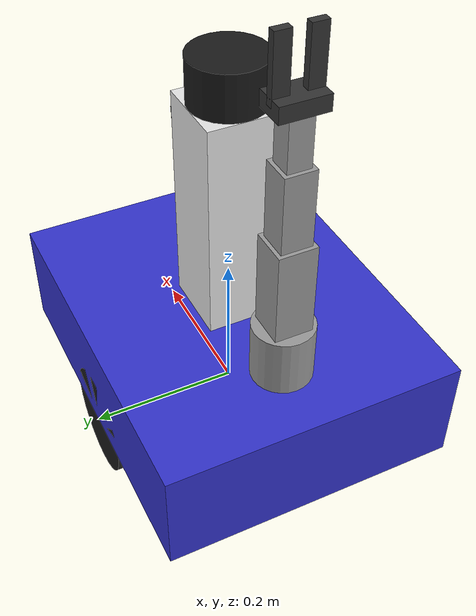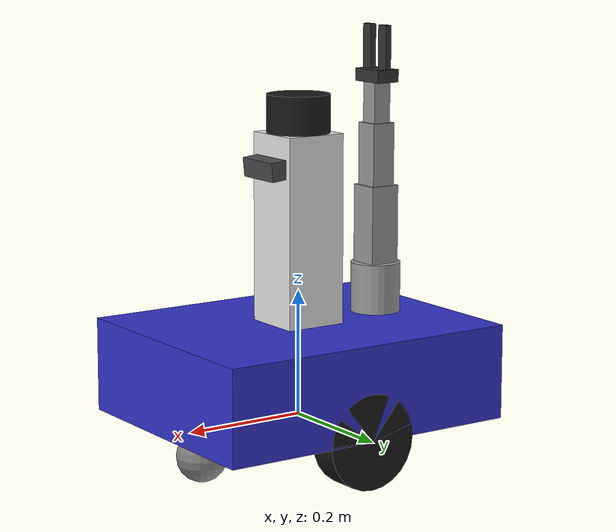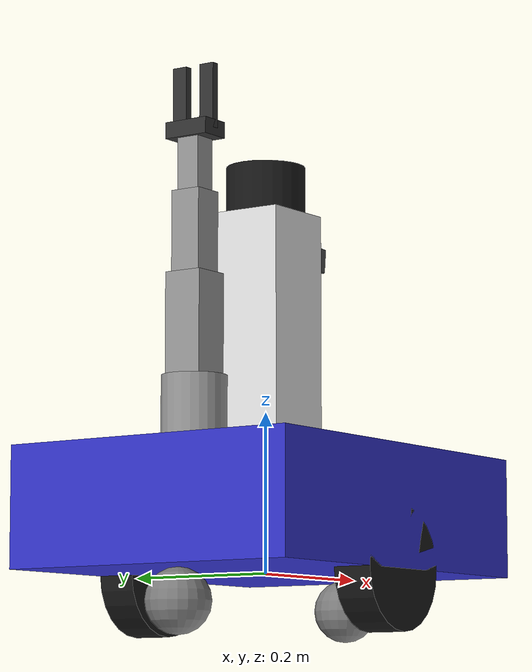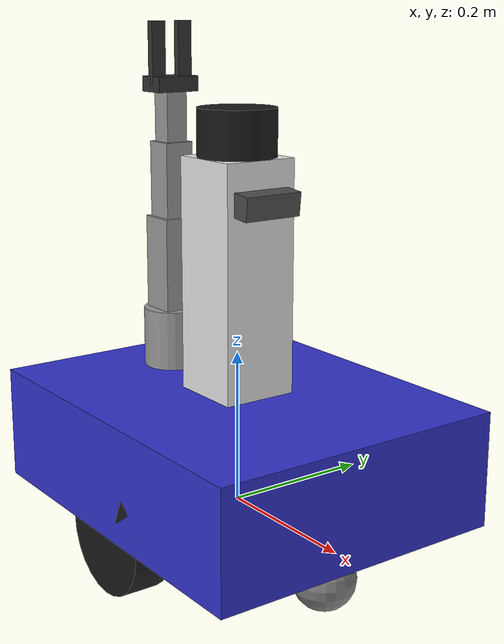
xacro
<?xml version="1.0"?>
<robot xmlns:xacro="http://www.ros.org/wiki/xacro" name="vla_robot">

  <!-- Include constants and macros -->
  <xacro:include filename="$(find robot_description)/urdf/common_properties.xacro"/>

  <!-- Robot Properties -->
  <xacro:property name="base_width" value="0.4"/>
  <xacro:property name="base_length" value="0.5"/>
  <xacro:property name="base_height" value="0.15"/>
  <xacro:property name="wheel_radius" value="0.075"/>
  <xacro:property name="wheel_width" value="0.05"/>
  <xacro:property name="wheel_separation" value="0.35"/>

  <!-- Base Link (Main body) -->
  <link name="base_footprint"/>

  <link name="base_link">
    <visual>
      <geometry>
        <box size="${base_length} ${base_width} ${base_height}"/>
      </geometry>
      <material name="blue">
        <color rgba="0.2 0.2 0.8 1.0"/>
      </material>
    </visual>
    <collision>
      <geometry>
        <box size="${base_length} ${base_width} ${base_height}"/>
      </geometry>
    </collision>
    <inertial>
      <mass value="15.0"/>
      <inertia ixx="0.234" ixy="0.0" ixz="0.0" iyy="0.469" iyz="0.0" izz="0.625"/>
    </inertial>
  </link>

  <joint name="base_footprint_joint" type="fixed">
    <parent link="base_footprint"/>
    <child link="base_link"/>
    <origin xyz="0 0 ${wheel_radius}" rpy="0 0 0"/>
  </joint>

  <!-- Wheels (Differential Drive) -->
  <xacro:macro name="wheel" params="prefix reflect">
    <link name="${prefix}_wheel">
      <visual>
        <geometry>
          <cylinder radius="${wheel_radius}" length="${wheel_width}"/>
        </geometry>
        <material name="black">
          <color rgba="0.1 0.1 0.1 1.0"/>
        </material>
        <origin xyz="0 0 0" rpy="${pi/2} 0 0"/>
      </visual>
      <collision>
        <geometry>
          <cylinder radius="${wheel_radius}" length="${wheel_width}"/>
        </geometry>
        <origin xyz="0 0 0" rpy="${pi/2} 0 0"/>
      </collision>
      <inertial>
        <mass value="1.0"/>
        <inertia ixx="0.001" ixy="0.0" ixz="0.0" iyy="0.001" iyz="0.0" izz="0.002"/>
      </inertial>
    </link>

    <joint name="${prefix}_wheel_joint" type="continuous">
      <parent link="base_link"/>
      <child link="${prefix}_wheel"/>
      <origin xyz="0 ${reflect*wheel_separation/2} ${-base_height/2}" rpy="0 0 0"/>
      <axis xyz="0 1 0"/>
    </joint>
  </xacro:macro>

  <xacro:wheel prefix="left" reflect="1"/>
  <xacro:wheel prefix="right" reflect="-1"/>

  <!-- Caster Wheels (Front and Back) -->
  <xacro:macro name="caster" params="prefix x_offset">
    <link name="${prefix}_caster">
      <visual>
        <geometry>
          <sphere radius="0.04"/>
        </geometry>
        <material name="grey">
          <color rgba="0.5 0.5 0.5 1.0"/>
        </material>
      </visual>
      <collision>
        <geometry>
          <sphere radius="0.04"/>
        </geometry>
      </collision>
      <inertial>
        <mass value="0.5"/>
        <inertia ixx="0.0001" ixy="0.0" ixz="0.0" iyy="0.0001" iyz="0.0" izz="0.0001"/>
      </inertial>
    </link>

    <joint name="${prefix}_caster_joint" type="fixed">
      <parent link="base_link"/>
      <child link="${prefix}_caster"/>
      <origin xyz="${x_offset} 0 ${-base_height/2-0.04}" rpy="0 0 0"/>
    </joint>
  </xacro:macro>

  <xacro:caster prefix="front" x_offset="0.18"/>
  <xacro:caster prefix="back" x_offset="-0.18"/>

  <!-- Sensor Tower -->
  <link name="sensor_tower">
    <visual>
      <geometry>
        <box size="0.1 0.1 0.3"/>
      </geometry>
      <material name="white">
        <color rgba="0.9 0.9 0.9 1.0"/>
      </material>
    </visual>
    <collision>
      <geometry>
        <box size="0.1 0.1 0.3"/>
      </geometry>
    </collision>
    <inertial>
      <mass value="2.0"/>
      <inertia ixx="0.015" ixy="0.0" ixz="0.0" iyy="0.015" iyz="0.0" izz="0.003"/>
    </inertial>
  </link>

  <joint name="sensor_tower_joint" type="fixed">
    <parent link="base_link"/>
    <child link="sensor_tower"/>
    <origin xyz="0 0 ${base_height/2 + 0.15}" rpy="0 0 0"/>
  </joint>

  <!-- Camera -->
  <link name="camera_link">
    <visual>
      <geometry>
        <box size="0.05 0.08 0.03"/>
      </geometry>
      <material name="camera_grey">
        <color rgba="0.3 0.3 0.3 1.0"/>
      </material>
    </visual>
    <collision>
      <geometry>
        <box size="0.05 0.08 0.03"/>
      </geometry>
    </collision>
    <inertial>
      <mass value="0.2"/>
      <inertia ixx="0.0001" ixy="0.0" ixz="0.0" iyy="0.0001" iyz="0.0" izz="0.0001"/>
    </inertial>
  </link>

  <joint name="camera_joint" type="fixed">
    <parent link="sensor_tower"/>
    <child link="camera_link"/>
    <origin xyz="0.05 0 0.1" rpy="0 0.1 0"/>
  </joint>

  <!-- Camera Optical Frame -->
  <link name="camera_optical_frame"/>

  <joint name="camera_optical_joint" type="fixed">
    <parent link="camera_link"/>
    <child link="camera_optical_frame"/>
    <origin xyz="0 0 0" rpy="${-pi/2} 0 ${-pi/2}"/>
  </joint>

  <!-- LiDAR -->
  <link name="lidar_link">
    <visual>
      <geometry>
        <cylinder radius="0.05" length="0.06"/>
      </geometry>
      <material name="lidar_black">
        <color rgba="0.1 0.1 0.1 1.0"/>
      </material>
    </visual>
    <collision>
      <geometry>
        <cylinder radius="0.05" length="0.06"/>
      </geometry>
    </collision>
    <inertial>
      <mass value="0.3"/>
      <inertia ixx="0.0001" ixy="0.0" ixz="0.0" iyy="0.0001" iyz="0.0" izz="0.0001"/>
    </inertial>
  </link>

  <joint name="lidar_joint" type="fixed">
    <parent link="sensor_tower"/>
    <child link="lidar_link"/>
    <origin xyz="0 0 0.18" rpy="0 0 0"/>
  </joint>

  <!-- 4-DOF Manipulator Arm -->
  <link name="arm_base_link">
    <visual>
      <geometry>
        <cylinder radius="0.04" length="0.08"/>
      </geometry>
      <material name="arm_grey">
        <color rgba="0.6 0.6 0.6 1.0"/>
      </material>
    </visual>
    <collision>
      <geometry>
        <cylinder radius="0.04" length="0.08"/>
      </geometry>
    </collision>
    <inertial>
      <mass value="0.5"/>
      <inertia ixx="0.001" ixy="0.0" ixz="0.0" iyy="0.001" iyz="0.0" izz="0.001"/>
    </inertial>
  </link>

  <joint name="arm_base_joint" type="fixed">
    <parent link="base_link"/>
    <child link="arm_base_link"/>
    <origin xyz="-0.15 0 ${base_height/2 + 0.04}" rpy="0 0 0"/>
  </joint>

  <!-- Shoulder Joint -->
  <link name="shoulder_link">
    <visual>
      <geometry>
        <box size="0.05 0.05 0.25"/>
      </geometry>
      <material name="arm_grey"/>
    </visual>
    <collision>
      <geometry>
        <box size="0.05 0.05 0.25"/>
      </geometry>
    </collision>
    <inertial>
      <mass value="0.8"/>
      <inertia ixx="0.004" ixy="0.0" ixz="0.0" iyy="0.004" iyz="0.0" izz="0.0004"/>
    </inertial>
  </link>

  <joint name="shoulder_joint" type="revolute">
    <parent link="arm_base_link"/>
    <child link="shoulder_link"/>
    <origin xyz="0 0 0.04" rpy="0 0 0"/>
    <axis xyz="0 0 1"/>
    <limit lower="${-pi}" upper="${pi}" effort="10.0" velocity="1.0"/>
  </joint>

  <!-- Elbow Link -->
  <link name="elbow_link">
    <visual>
      <geometry>
        <box size="0.04 0.04 0.2"/>
      </geometry>
      <material name="arm_grey"/>
    </visual>
    <collision>
      <geometry>
        <box size="0.04 0.04 0.2"/>
      </geometry>
    </collision>
    <inertial>
      <mass value="0.6"/>
      <inertia ixx="0.002" ixy="0.0" ixz="0.0" iyy="0.002" iyz="0.0" izz="0.0002"/>
    </inertial>
  </link>

  <joint name="elbow_joint" type="revolute">
    <parent link="shoulder_link"/>
    <child link="elbow_link"/>
    <origin xyz="0 0 0.125" rpy="0 0 0"/>
    <axis xyz="0 1 0"/>
    <limit lower="${-pi/2}" upper="${pi/2}" effort="8.0" velocity="1.0"/>
  </joint>

  <!-- Wrist Link -->
  <link name="wrist_link">
    <visual>
      <geometry>
        <box size="0.03 0.03 0.15"/>
      </geometry>
      <material name="arm_grey"/>
    </visual>
    <collision>
      <geometry>
        <box size="0.03 0.03 0.15"/>
      </geometry>
    </collision>
    <inertial>
      <mass value="0.4"/>
      <inertia ixx="0.001" ixy="0.0" ixz="0.0" iyy="0.001" iyz="0.0" izz="0.0001"/>
    </inertial>
  </link>

  <joint name="wrist_joint" type="revolute">
    <parent link="elbow_link"/>
    <child link="wrist_link"/>
    <origin xyz="0 0 0.1" rpy="0 0 0"/>
    <axis xyz="0 1 0"/>
    <limit lower="${-pi/2}" upper="${pi/2}" effort="5.0" velocity="1.5"/>
  </joint>

  <!-- Gripper Base -->
  <link name="gripper_base_link">
    <visual>
      <geometry>
        <box size="0.04 0.06 0.02"/>
      </geometry>
      <material name="gripper_black">
        <color rgba="0.2 0.2 0.2 1.0"/>
      </material>
    </visual>
    <collision>
      <geometry>
        <box size="0.04 0.06 0.02"/>
      </geometry>
    </collision>
    <inertial>
      <mass value="0.2"/>
      <inertia ixx="0.0001" ixy="0.0" ixz="0.0" iyy="0.0001" iyz="0.0" izz="0.0001"/>
    </inertial>
  </link>

  <joint name="gripper_base_joint" type="revolute">
    <parent link="wrist_link"/>
    <child link="gripper_base_link"/>
    <origin xyz="0 0 0.075" rpy="0 0 0"/>
    <axis xyz="0 0 1"/>
    <limit lower="${-pi}" upper="${pi}" effort="3.0" velocity="2.0"/>
  </joint>

  <!-- Gripper Fingers -->
  <xacro:macro name="gripper_finger" params="prefix reflect">
    <link name="${prefix}_finger">
      <visual>
        <geometry>
          <box size="0.01 0.02 0.08"/>
        </geometry>
        <material name="gripper_black"/>
      </visual>
      <collision>
        <geometry>
          <box size="0.01 0.02 0.08"/>
        </geometry>
      </collision>
      <inertial>
        <mass value="0.05"/>
        <inertia ixx="0.00001" ixy="0.0" ixz="0.0" iyy="0.00001" iyz="0.0" izz="0.00001"/>
      </inertial>
    </link>

    <joint name="${prefix}_finger_joint" type="prismatic">
      <parent link="gripper_base_link"/>
      <child link="${prefix}_finger"/>
      <origin xyz="0 ${reflect*0.02} 0.04" rpy="0 0 0"/>
      <axis xyz="0 1 0"/>
      <limit lower="0.0" upper="0.04" effort="2.0" velocity="0.1"/>
    </joint>
  </xacro:macro>

  <xacro:gripper_finger prefix="left" reflect="1"/>
  <xacro:gripper_finger prefix="right" reflect="-1"/>

  <!-- Tool Center Point (TCP) -->
  <link name="tool_frame"/>

  <joint name="tool_frame_joint" type="fixed">
    <parent link="gripper_base_link"/>
    <child link="tool_frame"/>
    <origin xyz="0 0 0.08" rpy="0 0 0"/>
  </joint>

  <!-- Gazebo Plugins and Sensors -->
  <gazebo>
    <plugin name="gazebo_ros_control" filename="libgazebo_ros_control.so">
      <robotNamespace>/vla_robot</robotNamespace>
    </plugin>
  </gazebo>

  <!-- Differential Drive Controller -->
  <gazebo>
    <plugin name="differential_drive_controller" filename="libgazebo_ros_diff_drive.so">
      <update_rate>50</update_rate>
      <left_joint>left_wheel_joint</left_joint>
      <right_joint>right_wheel_joint</right_joint>
      <wheel_separation>${wheel_separation}</wheel_separation>
      <wheel_diameter>${2*wheel_radius}</wheel_diameter>
      <max_wheel_torque>20</max_wheel_torque>
      <max_wheel_acceleration>1.0</max_wheel_acceleration>
      <command_topic>cmd_vel</command_topic>
      <publish_odom>true</publish_odom>
      <publish_odom_tf>true</publish_odom_tf>
      <publish_wheel_tf>false</publish_wheel_tf>
      <odometry_topic>odom</odometry_topic>
      <odometry_frame>odom</odometry_frame>
      <robot_base_frame>base_footprint</robot_base_frame>
    </plugin>
  </gazebo>

  <!-- Camera Sensor -->
  <gazebo reference="camera_link">
    <sensor type="camera" name="camera1">
      <update_rate>30.0</update_rate>
      <camera name="head">
        <horizontal_fov>1.3962634</horizontal_fov>
        <image>
          <width>1280</width>
          <height>720</height>
          <format>R8G8B8</format>
        </image>
        <clip>
          <near>0.02</near>
          <far>300</far>
        </clip>
        <noise>
          <type>gaussian</type>
          <mean>0.0</mean>
          <stddev>0.007</stddev>
        </noise>
      </camera>
      <plugin name="camera_controller" filename="libgazebo_ros_camera.so">
        <alwaysOn>true</alwaysOn>
        <updateRate>0.0</updateRate>
        <cameraName>camera</cameraName>
        <imageTopicName>image_raw</imageTopicName>
        <cameraInfoTopicName>camera_info</cameraInfoTopicName>
        <frameName>camera_optical_frame</frameName>
        <hackBaseline>0.07</hackBaseline>
        <distortionK1>0.0</distortionK1>
        <distortionK2>0.0</distortionK2>
        <distortionK3>0.0</distortionK3>
        <distortionT1>0.0</distortionT1>
        <distortionT2>0.0</distortionT2>
      </plugin>
    </sensor>
  </gazebo>

  <!-- LiDAR Sensor -->
  <gazebo reference="lidar_link">
    <sensor type="ray" name="lidar">
      <pose>0 0 0 0 0 0</pose>
      <visualize>false</visualize>
      <update_rate>10</update_rate>
      <ray>
        <scan>
          <horizontal>
            <samples>360</samples>
            <resolution>1</resolution>
            <min_angle>-3.14159</min_angle>
            <max_angle>3.14159</max_angle>
          </horizontal>
        </scan>
        <range>
          <min>0.10</min>
          <max>30.0</max>
          <resolution>0.01</resolution>
        </range>
        <noise>
          <type>gaussian</type>
          <mean>0.0</mean>
          <stddev>0.01</stddev>
        </noise>
      </ray>
      <plugin name="gazebo_ros_head_hokuyo_controller" filename="libgazebo_ros_laser.so">
        <topicName>scan</topicName>
        <frameName>lidar_link</frameName>
      </plugin>
    </sensor>
  </gazebo>

  <!-- Gazebo Colors -->
  <gazebo reference="base_link">
    <material>Gazebo/Blue</material>
  </gazebo>

  <gazebo reference="left_wheel">
    <material>Gazebo/DarkGrey</material>
  </gazebo>

  <gazebo reference="right_wheel">
    <material>Gazebo/DarkGrey</material>
  </gazebo>

</robot>

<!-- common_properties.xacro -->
<robot xmlns:xacro="http://www.ros.org/wiki/xacro">

  <!-- Common material definitions -->
  <material name="blue">
    <color rgba="0.2 0.2 0.8 1.0"/>
  </material>

  <material name="black">
    <color rgba="0.1 0.1 0.1 1.0"/>
  </material>

  <material name="white">
    <color rgba="0.9 0.9 0.9 1.0"/>
  </material>

  <material name="grey">
    <color rgba="0.5 0.5 0.5 1.0"/>
  </material>

  <material name="red">
    <color rgba="0.8 0.2 0.2 1.0"/>
  </material>

  <material name="green">
    <color rgba="0.2 0.8 0.2 1.0"/>
  </material>

  <!-- Common constants -->
  <xacro:property name="pi" value="3.14159265359"/>

</robot>
